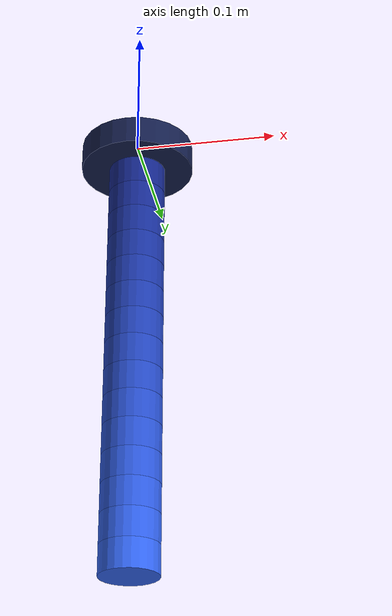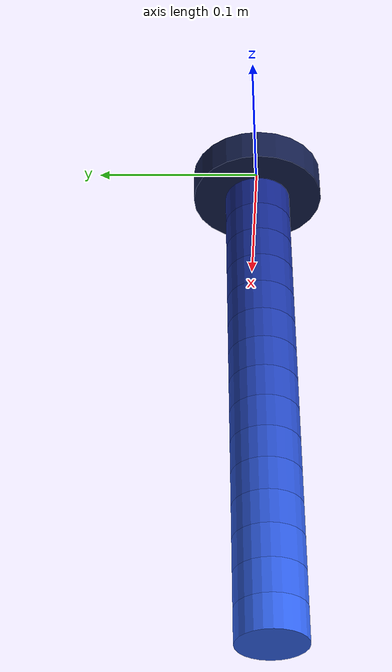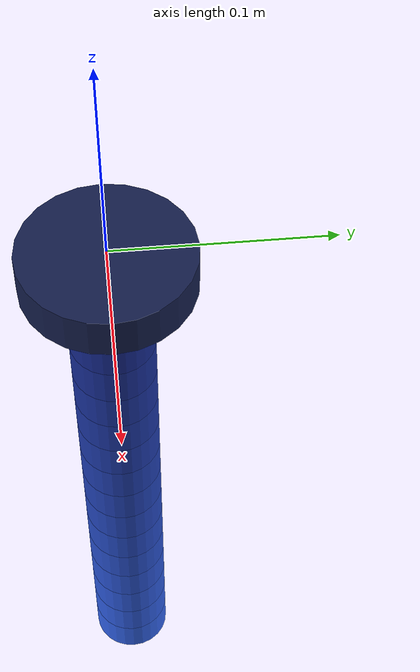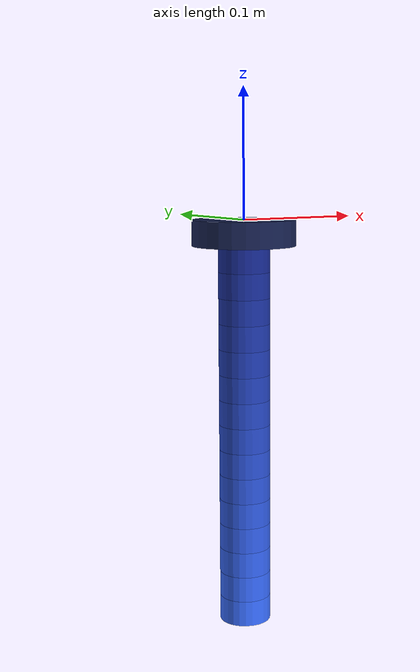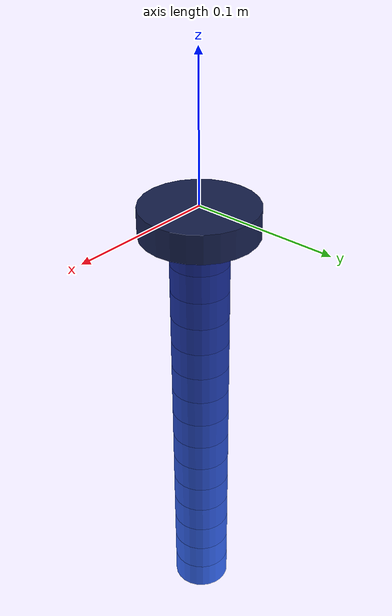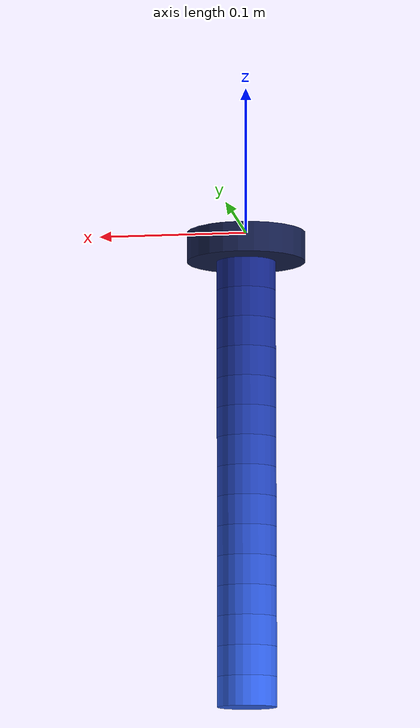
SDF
<?xml version="1.0" encoding="UTF-8"?>
<sdf version='1.9'>
  <model name='continuum_arm_soft'>
    <self_collide>false</self_collide>
    <static>false</static>

    <link name="continuum_arm_soft/base_cyl">
      <pose>0 0 -0.01000 0 0 0</pose>
      <gravity>true</gravity>
      <self_collide>false</self_collide>
      <velocity_decay/>
      <inertial>
        <mass>0.05</mass>
        <inertia>
          <ixx>5.227610e-05</ixx>
          <iyy>5.227610e-05</iyy>
          <izz>9.650973e-05</izz>
        </inertia>
      </inertial>
      <collision name="continuum_arm_soft/base_cyl_collision">
        <geometry>
          <cylinder><radius>0.04</radius><length>0.02</length></cylinder>
        </geometry>
      </collision>
      <visual name="continuum_arm_soft/base_cyl_visual">
        <geometry>
          <cylinder><radius>0.04</radius><length>0.02</length></cylinder>
        </geometry>
        <material>
          <ambient>0.05 0.08 0.20 1</ambient>
          <diffuse>0.08 0.12 0.30 1</diffuse>
          <specular>0.2 0.2 0.2 1</specular>
        </material>
      </visual>
    </link>
    <!-- Segment 1/15 -->
    <link name="continuum_arm_soft/segment_1">
      <pose>0 0 -0.03000 0 0 0</pose>
      <gravity>true</gravity>
      <self_collide>false</self_collide>
      <velocity_decay/>
      <inertial>
        <mass>0.0133</mass>
        <inertia>
          <ixx>3.686135e-06</ixx>
          <iyy>3.686135e-06</iyy>
          <izz>5.529203e-06</izz>
        </inertia>
      </inertial>
      <collision name="continuum_arm_soft/segment_1_collision">
        <geometry>
          <cylinder><radius>0.02</radius><length>0.02</length></cylinder>
        </geometry>
      </collision>
      <visual name="continuum_arm_soft/segment_1_visual">
        <geometry>
          <cylinder><radius>0.02</radius><length>0.02</length></cylinder>
        </geometry>
        <material>
          <ambient>0.050 0.080 0.350 1</ambient>
          <diffuse>0.080 0.150 0.550 1</diffuse>
          <specular>0.2 0.2 0.2 1</specular>
        </material>
      </visual>
    </link>
    <joint name="continuum_arm_soft/joint_1" type="universal">
      <parent>continuum_arm_soft/base_cyl</parent>
      <child>continuum_arm_soft/segment_1</child>
      <pose>0 0 0.01000 0 0 0</pose>
      <axis>
        <xyz>1 0 0</xyz>
        <limit>
          <lower>-0.5</lower>
          <upper>0.5</upper>
          <effort>0.6</effort>
          <velocity>5.0</velocity>
        </limit>
        <dynamics>
          <spring_stiffness>1.25</spring_stiffness>
          <spring_reference>0.0</spring_reference>
          <damping>0.08</damping>
        </dynamics>
      </axis>
      <axis2>
        <xyz>0 1 0</xyz>
        <limit>
          <lower>-0.5</lower>
          <upper>0.5</upper>
          <effort>0.6</effort>
          <velocity>5.0</velocity>
        </limit>
        <dynamics>
          <spring_stiffness>1.25</spring_stiffness>
          <spring_reference>0.0</spring_reference>
          <damping>0.08</damping>
        </dynamics>
      </axis2>
    </joint>
    <!-- Segment 2/15 -->
    <link name="continuum_arm_soft/segment_2">
      <pose>0 0 -0.05000 0 0 0</pose>
      <gravity>true</gravity>
      <self_collide>false</self_collide>
      <velocity_decay/>
      <inertial>
        <mass>0.0133</mass>
        <inertia>
          <ixx>3.686135e-06</ixx>
          <iyy>3.686135e-06</iyy>
          <izz>5.529203e-06</izz>
        </inertia>
      </inertial>
      <collision name="continuum_arm_soft/segment_2_collision">
        <geometry>
          <cylinder><radius>0.02</radius><length>0.02</length></cylinder>
        </geometry>
      </collision>
      <visual name="continuum_arm_soft/segment_2_visual">
        <geometry>
          <cylinder><radius>0.02</radius><length>0.02</length></cylinder>
        </geometry>
        <material>
          <ambient>0.057 0.093 0.382 1</ambient>
          <diffuse>0.089 0.168 0.579 1</diffuse>
          <specular>0.2 0.2 0.2 1</specular>
        </material>
      </visual>
    </link>
    <joint name="continuum_arm_soft/joint_2" type="universal">
      <parent>continuum_arm_soft/segment_1</parent>
      <child>continuum_arm_soft/segment_2</child>
      <pose>0 0 0.01000 0 0 0</pose>
      <axis>
        <xyz>1 0 0</xyz>
        <limit>
          <lower>-0.5</lower>
          <upper>0.5</upper>
          <effort>0.6</effort>
          <velocity>5.0</velocity>
        </limit>
        <dynamics>
          <spring_stiffness>1.25</spring_stiffness>
          <spring_reference>0.0</spring_reference>
          <damping>0.08</damping>
        </dynamics>
      </axis>
      <axis2>
        <xyz>0 1 0</xyz>
        <limit>
          <lower>-0.5</lower>
          <upper>0.5</upper>
          <effort>0.6</effort>
          <velocity>5.0</velocity>
        </limit>
        <dynamics>
          <spring_stiffness>1.25</spring_stiffness>
          <spring_reference>0.0</spring_reference>
          <damping>0.08</damping>
        </dynamics>
      </axis2>
    </joint>
    <!-- Segment 3/15 -->
    <link name="continuum_arm_soft/segment_3">
      <pose>0 0 -0.07000 0 0 0</pose>
      <gravity>true</gravity>
      <self_collide>false</self_collide>
      <velocity_decay/>
      <inertial>
        <mass>0.0133</mass>
        <inertia>
          <ixx>3.686135e-06</ixx>
          <iyy>3.686135e-06</iyy>
          <izz>5.529203e-06</izz>
        </inertia>
      </inertial>
      <collision name="continuum_arm_soft/segment_3_collision">
        <geometry>
          <cylinder><radius>0.02</radius><length>0.02</length></cylinder>
        </geometry>
      </collision>
      <visual name="continuum_arm_soft/segment_3_visual">
        <geometry>
          <cylinder><radius>0.02</radius><length>0.02</length></cylinder>
        </geometry>
        <material>
          <ambient>0.064 0.106 0.414 1</ambient>
          <diffuse>0.097 0.186 0.607 1</diffuse>
          <specular>0.2 0.2 0.2 1</specular>
        </material>
      </visual>
    </link>
    <joint name="continuum_arm_soft/joint_3" type="universal">
      <parent>continuum_arm_soft/segment_2</parent>
      <child>continuum_arm_soft/segment_3</child>
      <pose>0 0 0.01000 0 0 0</pose>
      <axis>
        <xyz>1 0 0</xyz>
        <limit>
          <lower>-0.5</lower>
          <upper>0.5</upper>
          <effort>0.6</effort>
          <velocity>5.0</velocity>
        </limit>
        <dynamics>
          <spring_stiffness>1.25</spring_stiffness>
          <spring_reference>0.0</spring_reference>
          <damping>0.08</damping>
        </dynamics>
      </axis>
      <axis2>
        <xyz>0 1 0</xyz>
        <limit>
          <lower>-0.5</lower>
          <upper>0.5</upper>
          <effort>0.6</effort>
          <velocity>5.0</velocity>
        </limit>
        <dynamics>
          <spring_stiffness>1.25</spring_stiffness>
          <spring_reference>0.0</spring_reference>
          <damping>0.08</damping>
        </dynamics>
      </axis2>
    </joint>
    <!-- Segment 4/15 -->
    <link name="continuum_arm_soft/segment_4">
      <pose>0 0 -0.09000 0 0 0</pose>
      <gravity>true</gravity>
      <self_collide>false</self_collide>
      <velocity_decay/>
      <inertial>
        <mass>0.0133</mass>
        <inertia>
          <ixx>3.686135e-06</ixx>
          <iyy>3.686135e-06</iyy>
          <izz>5.529203e-06</izz>
        </inertia>
      </inertial>
      <collision name="continuum_arm_soft/segment_4_collision">
        <geometry>
          <cylinder><radius>0.02</radius><length>0.02</length></cylinder>
        </geometry>
      </collision>
      <visual name="continuum_arm_soft/segment_4_visual">
        <geometry>
          <cylinder><radius>0.02</radius><length>0.02</length></cylinder>
        </geometry>
        <material>
          <ambient>0.071 0.119 0.446 1</ambient>
          <diffuse>0.106 0.204 0.636 1</diffuse>
          <specular>0.2 0.2 0.2 1</specular>
        </material>
      </visual>
    </link>
    <joint name="continuum_arm_soft/joint_4" type="universal">
      <parent>continuum_arm_soft/segment_3</parent>
      <child>continuum_arm_soft/segment_4</child>
      <pose>0 0 0.01000 0 0 0</pose>
      <axis>
        <xyz>1 0 0</xyz>
        <limit>
          <lower>-0.5</lower>
          <upper>0.5</upper>
          <effort>0.6</effort>
          <velocity>5.0</velocity>
        </limit>
        <dynamics>
          <spring_stiffness>1.25</spring_stiffness>
          <spring_reference>0.0</spring_reference>
          <damping>0.08</damping>
        </dynamics>
      </axis>
      <axis2>
        <xyz>0 1 0</xyz>
        <limit>
          <lower>-0.5</lower>
          <upper>0.5</upper>
          <effort>0.6</effort>
          <velocity>5.0</velocity>
        </limit>
        <dynamics>
          <spring_stiffness>1.25</spring_stiffness>
          <spring_reference>0.0</spring_reference>
          <damping>0.08</damping>
        </dynamics>
      </axis2>
    </joint>
    <!-- Segment 5/15 -->
    <link name="continuum_arm_soft/segment_5">
      <pose>0 0 -0.11000 0 0 0</pose>
      <gravity>true</gravity>
      <self_collide>false</self_collide>
      <velocity_decay/>
      <inertial>
        <mass>0.0133</mass>
        <inertia>
          <ixx>3.686135e-06</ixx>
          <iyy>3.686135e-06</iyy>
          <izz>5.529203e-06</izz>
        </inertia>
      </inertial>
      <collision name="continuum_arm_soft/segment_5_collision">
        <geometry>
          <cylinder><radius>0.02</radius><length>0.02</length></cylinder>
        </geometry>
      </collision>
      <visual name="continuum_arm_soft/segment_5_visual">
        <geometry>
          <cylinder><radius>0.02</radius><length>0.02</length></cylinder>
        </geometry>
        <material>
          <ambient>0.079 0.131 0.479 1</ambient>
          <diffuse>0.114 0.221 0.664 1</diffuse>
          <specular>0.2 0.2 0.2 1</specular>
        </material>
      </visual>
    </link>
    <joint name="continuum_arm_soft/joint_5" type="universal">
      <parent>continuum_arm_soft/segment_4</parent>
      <child>continuum_arm_soft/segment_5</child>
      <pose>0 0 0.01000 0 0 0</pose>
      <axis>
        <xyz>1 0 0</xyz>
        <limit>
          <lower>-0.5</lower>
          <upper>0.5</upper>
          <effort>0.6</effort>
          <velocity>5.0</velocity>
        </limit>
        <dynamics>
          <spring_stiffness>1.25</spring_stiffness>
          <spring_reference>0.0</spring_reference>
          <damping>0.08</damping>
        </dynamics>
      </axis>
      <axis2>
        <xyz>0 1 0</xyz>
        <limit>
          <lower>-0.5</lower>
          <upper>0.5</upper>
          <effort>0.6</effort>
          <velocity>5.0</velocity>
        </limit>
        <dynamics>
          <spring_stiffness>1.25</spring_stiffness>
          <spring_reference>0.0</spring_reference>
          <damping>0.08</damping>
        </dynamics>
      </axis2>
    </joint>
    <!-- Segment 6/15 -->
    <link name="continuum_arm_soft/segment_6">
      <pose>0 0 -0.13000 0 0 0</pose>
      <gravity>true</gravity>
      <self_collide>false</self_collide>
      <velocity_decay/>
      <inertial>
        <mass>0.0133</mass>
        <inertia>
          <ixx>3.686135e-06</ixx>
          <iyy>3.686135e-06</iyy>
          <izz>5.529203e-06</izz>
        </inertia>
      </inertial>
      <collision name="continuum_arm_soft/segment_6_collision">
        <geometry>
          <cylinder><radius>0.02</radius><length>0.02</length></cylinder>
        </geometry>
      </collision>
      <visual name="continuum_arm_soft/segment_6_visual">
        <geometry>
          <cylinder><radius>0.02</radius><length>0.02</length></cylinder>
        </geometry>
        <material>
          <ambient>0.086 0.144 0.511 1</ambient>
          <diffuse>0.123 0.239 0.693 1</diffuse>
          <specular>0.2 0.2 0.2 1</specular>
        </material>
      </visual>
    </link>
    <joint name="continuum_arm_soft/joint_6" type="universal">
      <parent>continuum_arm_soft/segment_5</parent>
      <child>continuum_arm_soft/segment_6</child>
      <pose>0 0 0.01000 0 0 0</pose>
      <axis>
        <xyz>1 0 0</xyz>
        <limit>
          <lower>-0.5</lower>
          <upper>0.5</upper>
          <effort>0.6</effort>
          <velocity>5.0</velocity>
        </limit>
        <dynamics>
          <spring_stiffness>1.25</spring_stiffness>
          <spring_reference>0.0</spring_reference>
          <damping>0.08</damping>
        </dynamics>
      </axis>
      <axis2>
        <xyz>0 1 0</xyz>
        <limit>
          <lower>-0.5</lower>
          <upper>0.5</upper>
          <effort>0.6</effort>
          <velocity>5.0</velocity>
        </limit>
        <dynamics>
          <spring_stiffness>1.25</spring_stiffness>
          <spring_reference>0.0</spring_reference>
          <damping>0.08</damping>
        </dynamics>
      </axis2>
    </joint>
    <!-- Segment 7/15 -->
    <link name="continuum_arm_soft/segment_7">
      <pose>0 0 -0.15000 0 0 0</pose>
      <gravity>true</gravity>
      <self_collide>false</self_collide>
      <velocity_decay/>
      <inertial>
        <mass>0.0133</mass>
        <inertia>
          <ixx>3.686135e-06</ixx>
          <iyy>3.686135e-06</iyy>
          <izz>5.529203e-06</izz>
        </inertia>
      </inertial>
      <collision name="continuum_arm_soft/segment_7_collision">
        <geometry>
          <cylinder><radius>0.02</radius><length>0.02</length></cylinder>
        </geometry>
      </collision>
      <visual name="continuum_arm_soft/segment_7_visual">
        <geometry>
          <cylinder><radius>0.02</radius><length>0.02</length></cylinder>
        </geometry>
        <material>
          <ambient>0.093 0.157 0.543 1</ambient>
          <diffuse>0.131 0.257 0.721 1</diffuse>
          <specular>0.2 0.2 0.2 1</specular>
        </material>
      </visual>
    </link>
    <joint name="continuum_arm_soft/joint_7" type="universal">
      <parent>continuum_arm_soft/segment_6</parent>
      <child>continuum_arm_soft/segment_7</child>
      <pose>0 0 0.01000 0 0 0</pose>
      <axis>
        <xyz>1 0 0</xyz>
        <limit>
          <lower>-0.5</lower>
          <upper>0.5</upper>
          <effort>0.6</effort>
          <velocity>5.0</velocity>
        </limit>
        <dynamics>
          <spring_stiffness>1.25</spring_stiffness>
          <spring_reference>0.0</spring_reference>
          <damping>0.08</damping>
        </dynamics>
      </axis>
      <axis2>
        <xyz>0 1 0</xyz>
        <limit>
          <lower>-0.5</lower>
          <upper>0.5</upper>
          <effort>0.6</effort>
          <velocity>5.0</velocity>
        </limit>
        <dynamics>
          <spring_stiffness>1.25</spring_stiffness>
          <spring_reference>0.0</spring_reference>
          <damping>0.08</damping>
        </dynamics>
      </axis2>
    </joint>
    <!-- Segment 8/15 -->
    <link name="continuum_arm_soft/segment_8">
      <pose>0 0 -0.17000 0 0 0</pose>
      <gravity>true</gravity>
      <self_collide>false</self_collide>
      <velocity_decay/>
      <inertial>
        <mass>0.0133</mass>
        <inertia>
          <ixx>3.686135e-06</ixx>
          <iyy>3.686135e-06</iyy>
          <izz>5.529203e-06</izz>
        </inertia>
      </inertial>
      <collision name="continuum_arm_soft/segment_8_collision">
        <geometry>
          <cylinder><radius>0.02</radius><length>0.02</length></cylinder>
        </geometry>
      </collision>
      <visual name="continuum_arm_soft/segment_8_visual">
        <geometry>
          <cylinder><radius>0.02</radius><length>0.02</length></cylinder>
        </geometry>
        <material>
          <ambient>0.100 0.170 0.575 1</ambient>
          <diffuse>0.140 0.275 0.750 1</diffuse>
          <specular>0.2 0.2 0.2 1</specular>
        </material>
      </visual>
    </link>
    <joint name="continuum_arm_soft/joint_8" type="universal">
      <parent>continuum_arm_soft/segment_7</parent>
      <child>continuum_arm_soft/segment_8</child>
      <pose>0 0 0.01000 0 0 0</pose>
      <axis>
        <xyz>1 0 0</xyz>
        <limit>
          <lower>-0.5</lower>
          <upper>0.5</upper>
          <effort>0.6</effort>
          <velocity>5.0</velocity>
        </limit>
        <dynamics>
          <spring_stiffness>1.25</spring_stiffness>
          <spring_reference>0.0</spring_reference>
          <damping>0.08</damping>
        </dynamics>
      </axis>
      <axis2>
        <xyz>0 1 0</xyz>
        <limit>
          <lower>-0.5</lower>
          <upper>0.5</upper>
          <effort>0.6</effort>
          <velocity>5.0</velocity>
        </limit>
        <dynamics>
          <spring_stiffness>1.25</spring_stiffness>
          <spring_reference>0.0</spring_reference>
          <damping>0.08</damping>
        </dynamics>
      </axis2>
    </joint>
    <!-- Segment 9/15 -->
    <link name="continuum_arm_soft/segment_9">
      <pose>0 0 -0.19000 0 0 0</pose>
      <gravity>true</gravity>
      <self_collide>false</self_collide>
      <velocity_decay/>
      <inertial>
        <mass>0.0133</mass>
        <inertia>
          <ixx>3.686135e-06</ixx>
          <iyy>3.686135e-06</iyy>
          <izz>5.529203e-06</izz>
        </inertia>
      </inertial>
      <collision name="continuum_arm_soft/segment_9_collision">
        <geometry>
          <cylinder><radius>0.02</radius><length>0.02</length></cylinder>
        </geometry>
      </collision>
      <visual name="continuum_arm_soft/segment_9_visual">
        <geometry>
          <cylinder><radius>0.02</radius><length>0.02</length></cylinder>
        </geometry>
        <material>
          <ambient>0.107 0.183 0.607 1</ambient>
          <diffuse>0.149 0.293 0.779 1</diffuse>
          <specular>0.2 0.2 0.2 1</specular>
        </material>
      </visual>
    </link>
    <joint name="continuum_arm_soft/joint_9" type="universal">
      <parent>continuum_arm_soft/segment_8</parent>
      <child>continuum_arm_soft/segment_9</child>
      <pose>0 0 0.01000 0 0 0</pose>
      <axis>
        <xyz>1 0 0</xyz>
        <limit>
          <lower>-0.5</lower>
          <upper>0.5</upper>
          <effort>0.6</effort>
          <velocity>5.0</velocity>
        </limit>
        <dynamics>
          <spring_stiffness>1.25</spring_stiffness>
          <spring_reference>0.0</spring_reference>
          <damping>0.08</damping>
        </dynamics>
      </axis>
      <axis2>
        <xyz>0 1 0</xyz>
        <limit>
          <lower>-0.5</lower>
          <upper>0.5</upper>
          <effort>0.6</effort>
          <velocity>5.0</velocity>
        </limit>
        <dynamics>
          <spring_stiffness>1.25</spring_stiffness>
          <spring_reference>0.0</spring_reference>
          <damping>0.08</damping>
        </dynamics>
      </axis2>
    </joint>
    <!-- Segment 10/15 -->
    <link name="continuum_arm_soft/segment_10">
      <pose>0 0 -0.21000 0 0 0</pose>
      <gravity>true</gravity>
      <self_collide>false</self_collide>
      <velocity_decay/>
      <inertial>
        <mass>0.0133</mass>
        <inertia>
          <ixx>3.686135e-06</ixx>
          <iyy>3.686135e-06</iyy>
          <izz>5.529203e-06</izz>
        </inertia>
      </inertial>
      <collision name="continuum_arm_soft/segment_10_collision">
        <geometry>
          <cylinder><radius>0.02</radius><length>0.02</length></cylinder>
        </geometry>
      </collision>
      <visual name="continuum_arm_soft/segment_10_visual">
        <geometry>
          <cylinder><radius>0.02</radius><length>0.02</length></cylinder>
        </geometry>
        <material>
          <ambient>0.114 0.196 0.639 1</ambient>
          <diffuse>0.157 0.311 0.807 1</diffuse>
          <specular>0.2 0.2 0.2 1</specular>
        </material>
      </visual>
    </link>
    <joint name="continuum_arm_soft/joint_10" type="universal">
      <parent>continuum_arm_soft/segment_9</parent>
      <child>continuum_arm_soft/segment_10</child>
      <pose>0 0 0.01000 0 0 0</pose>
      <axis>
        <xyz>1 0 0</xyz>
        <limit>
          <lower>-0.5</lower>
          <upper>0.5</upper>
          <effort>0.6</effort>
          <velocity>5.0</velocity>
        </limit>
        <dynamics>
          <spring_stiffness>1.25</spring_stiffness>
          <spring_reference>0.0</spring_reference>
          <damping>0.08</damping>
        </dynamics>
      </axis>
      <axis2>
        <xyz>0 1 0</xyz>
        <limit>
          <lower>-0.5</lower>
          <upper>0.5</upper>
          <effort>0.6</effort>
          <velocity>5.0</velocity>
        </limit>
        <dynamics>
          <spring_stiffness>1.25</spring_stiffness>
          <spring_reference>0.0</spring_reference>
          <damping>0.08</damping>
        </dynamics>
      </axis2>
    </joint>
    <!-- Segment 11/15 -->
    <link name="continuum_arm_soft/segment_11">
      <pose>0 0 -0.23000 0 0 0</pose>
      <gravity>true</gravity>
      <self_collide>false</self_collide>
      <velocity_decay/>
      <inertial>
        <mass>0.0133</mass>
        <inertia>
          <ixx>3.686135e-06</ixx>
          <iyy>3.686135e-06</iyy>
          <izz>5.529203e-06</izz>
        </inertia>
      </inertial>
      <collision name="continuum_arm_soft/segment_11_collision">
        <geometry>
          <cylinder><radius>0.02</radius><length>0.02</length></cylinder>
        </geometry>
      </collision>
      <visual name="continuum_arm_soft/segment_11_visual">
        <geometry>
          <cylinder><radius>0.02</radius><length>0.02</length></cylinder>
        </geometry>
        <material>
          <ambient>0.121 0.209 0.671 1</ambient>
          <diffuse>0.166 0.329 0.836 1</diffuse>
          <specular>0.2 0.2 0.2 1</specular>
        </material>
      </visual>
    </link>
    <joint name="continuum_arm_soft/joint_11" type="universal">
      <parent>continuum_arm_soft/segment_10</parent>
      <child>continuum_arm_soft/segment_11</child>
      <pose>0 0 0.01000 0 0 0</pose>
      <axis>
        <xyz>1 0 0</xyz>
        <limit>
          <lower>-0.5</lower>
          <upper>0.5</upper>
          <effort>0.6</effort>
          <velocity>5.0</velocity>
        </limit>
        <dynamics>
          <spring_stiffness>1.25</spring_stiffness>
          <spring_reference>0.0</spring_reference>
          <damping>0.08</damping>
        </dynamics>
      </axis>
      <axis2>
        <xyz>0 1 0</xyz>
        <limit>
          <lower>-0.5</lower>
          <upper>0.5</upper>
          <effort>0.6</effort>
          <velocity>5.0</velocity>
        </limit>
        <dynamics>
          <spring_stiffness>1.25</spring_stiffness>
          <spring_reference>0.0</spring_reference>
          <damping>0.08</damping>
        </dynamics>
      </axis2>
    </joint>
    <!-- Segment 12/15 -->
    <link name="continuum_arm_soft/segment_12">
      <pose>0 0 -0.25000 0 0 0</pose>
      <gravity>true</gravity>
      <self_collide>false</self_collide>
      <velocity_decay/>
      <inertial>
        <mass>0.0133</mass>
        <inertia>
          <ixx>3.686135e-06</ixx>
          <iyy>3.686135e-06</iyy>
          <izz>5.529203e-06</izz>
        </inertia>
      </inertial>
      <collision name="continuum_arm_soft/segment_12_collision">
        <geometry>
          <cylinder><radius>0.02</radius><length>0.02</length></cylinder>
        </geometry>
      </collision>
      <visual name="continuum_arm_soft/segment_12_visual">
        <geometry>
          <cylinder><radius>0.02</radius><length>0.02</length></cylinder>
        </geometry>
        <material>
          <ambient>0.129 0.221 0.704 1</ambient>
          <diffuse>0.174 0.346 0.864 1</diffuse>
          <specular>0.2 0.2 0.2 1</specular>
        </material>
      </visual>
    </link>
    <joint name="continuum_arm_soft/joint_12" type="universal">
      <parent>continuum_arm_soft/segment_11</parent>
      <child>continuum_arm_soft/segment_12</child>
      <pose>0 0 0.01000 0 0 0</pose>
      <axis>
        <xyz>1 0 0</xyz>
        <limit>
          <lower>-0.5</lower>
          <upper>0.5</upper>
          <effort>0.6</effort>
          <velocity>5.0</velocity>
        </limit>
        <dynamics>
          <spring_stiffness>1.25</spring_stiffness>
          <spring_reference>0.0</spring_reference>
          <damping>0.08</damping>
        </dynamics>
      </axis>
      <axis2>
        <xyz>0 1 0</xyz>
        <limit>
          <lower>-0.5</lower>
          <upper>0.5</upper>
          <effort>0.6</effort>
          <velocity>5.0</velocity>
        </limit>
        <dynamics>
          <spring_stiffness>1.25</spring_stiffness>
          <spring_reference>0.0</spring_reference>
          <damping>0.08</damping>
        </dynamics>
      </axis2>
    </joint>
    <!-- Segment 13/15 -->
    <link name="continuum_arm_soft/segment_13">
      <pose>0 0 -0.27000 0 0 0</pose>
      <gravity>true</gravity>
      <self_collide>false</self_collide>
      <velocity_decay/>
      <inertial>
        <mass>0.0133</mass>
        <inertia>
          <ixx>3.686135e-06</ixx>
          <iyy>3.686135e-06</iyy>
          <izz>5.529203e-06</izz>
        </inertia>
      </inertial>
      <collision name="continuum_arm_soft/segment_13_collision">
        <geometry>
          <cylinder><radius>0.02</radius><length>0.02</length></cylinder>
        </geometry>
      </collision>
      <visual name="continuum_arm_soft/segment_13_visual">
        <geometry>
          <cylinder><radius>0.02</radius><length>0.02</length></cylinder>
        </geometry>
        <material>
          <ambient>0.136 0.234 0.736 1</ambient>
          <diffuse>0.183 0.364 0.893 1</diffuse>
          <specular>0.2 0.2 0.2 1</specular>
        </material>
      </visual>
    </link>
    <joint name="continuum_arm_soft/joint_13" type="universal">
      <parent>continuum_arm_soft/segment_12</parent>
      <child>continuum_arm_soft/segment_13</child>
      <pose>0 0 0.01000 0 0 0</pose>
      <axis>
        <xyz>1 0 0</xyz>
        <limit>
          <lower>-0.5</lower>
          <upper>0.5</upper>
          <effort>0.6</effort>
          <velocity>5.0</velocity>
        </limit>
        <dynamics>
          <spring_stiffness>1.25</spring_stiffness>
          <spring_reference>0.0</spring_reference>
          <damping>0.08</damping>
        </dynamics>
      </axis>
      <axis2>
        <xyz>0 1 0</xyz>
        <limit>
          <lower>-0.5</lower>
          <upper>0.5</upper>
          <effort>0.6</effort>
          <velocity>5.0</velocity>
        </limit>
        <dynamics>
          <spring_stiffness>1.25</spring_stiffness>
          <spring_reference>0.0</spring_reference>
          <damping>0.08</damping>
        </dynamics>
      </axis2>
    </joint>
    <!-- Segment 14/15 -->
    <link name="continuum_arm_soft/segment_14">
      <pose>0 0 -0.29000 0 0 0</pose>
      <gravity>true</gravity>
      <self_collide>false</self_collide>
      <velocity_decay/>
      <inertial>
        <mass>0.0133</mass>
        <inertia>
          <ixx>3.686135e-06</ixx>
          <iyy>3.686135e-06</iyy>
          <izz>5.529203e-06</izz>
        </inertia>
      </inertial>
      <collision name="continuum_arm_soft/segment_14_collision">
        <geometry>
          <cylinder><radius>0.02</radius><length>0.02</length></cylinder>
        </geometry>
      </collision>
      <visual name="continuum_arm_soft/segment_14_visual">
        <geometry>
          <cylinder><radius>0.02</radius><length>0.02</length></cylinder>
        </geometry>
        <material>
          <ambient>0.143 0.247 0.768 1</ambient>
          <diffuse>0.191 0.382 0.921 1</diffuse>
          <specular>0.2 0.2 0.2 1</specular>
        </material>
      </visual>
    </link>
    <joint name="continuum_arm_soft/joint_14" type="universal">
      <parent>continuum_arm_soft/segment_13</parent>
      <child>continuum_arm_soft/segment_14</child>
      <pose>0 0 0.01000 0 0 0</pose>
      <axis>
        <xyz>1 0 0</xyz>
        <limit>
          <lower>-0.5</lower>
          <upper>0.5</upper>
          <effort>0.6</effort>
          <velocity>5.0</velocity>
        </limit>
        <dynamics>
          <spring_stiffness>1.25</spring_stiffness>
          <spring_reference>0.0</spring_reference>
          <damping>0.08</damping>
        </dynamics>
      </axis>
      <axis2>
        <xyz>0 1 0</xyz>
        <limit>
          <lower>-0.5</lower>
          <upper>0.5</upper>
          <effort>0.6</effort>
          <velocity>5.0</velocity>
        </limit>
        <dynamics>
          <spring_stiffness>1.25</spring_stiffness>
          <spring_reference>0.0</spring_reference>
          <damping>0.08</damping>
        </dynamics>
      </axis2>
    </joint>
    <!-- Segment 15/15 -->
    <link name="continuum_arm_soft/segment_15">
      <pose>0 0 -0.31000 0 0 0</pose>
      <gravity>true</gravity>
      <self_collide>false</self_collide>
      <velocity_decay/>
      <inertial>
        <mass>0.0133</mass>
        <inertia>
          <ixx>3.686135e-06</ixx>
          <iyy>3.686135e-06</iyy>
          <izz>5.529203e-06</izz>
        </inertia>
      </inertial>
      <collision name="continuum_arm_soft/segment_15_collision">
        <geometry>
          <cylinder><radius>0.02</radius><length>0.02</length></cylinder>
        </geometry>
      </collision>
      <visual name="continuum_arm_soft/segment_15_visual">
        <geometry>
          <cylinder><radius>0.02</radius><length>0.02</length></cylinder>
        </geometry>
        <material>
          <ambient>0.150 0.260 0.800 1</ambient>
          <diffuse>0.200 0.400 0.950 1</diffuse>
          <specular>0.2 0.2 0.2 1</specular>
        </material>
      </visual>
    </link>
    <joint name="continuum_arm_soft/joint_15" type="universal">
      <parent>continuum_arm_soft/segment_14</parent>
      <child>continuum_arm_soft/segment_15</child>
      <pose>0 0 0.01000 0 0 0</pose>
      <axis>
        <xyz>1 0 0</xyz>
        <limit>
          <lower>-0.5</lower>
          <upper>0.5</upper>
          <effort>0.6</effort>
          <velocity>5.0</velocity>
        </limit>
        <dynamics>
          <spring_stiffness>1.25</spring_stiffness>
          <spring_reference>0.0</spring_reference>
          <damping>0.08</damping>
        </dynamics>
      </axis>
      <axis2>
        <xyz>0 1 0</xyz>
        <limit>
          <lower>-0.5</lower>
          <upper>0.5</upper>
          <effort>0.6</effort>
          <velocity>5.0</velocity>
        </limit>
        <dynamics>
          <spring_stiffness>1.25</spring_stiffness>
          <spring_reference>0.0</spring_reference>
          <damping>0.08</damping>
        </dynamics>
      </axis2>
    </joint>

    <plugin filename="TendonArmController" name="tendon_arm_controller::TendonArmController">
      <joint_name>continuum_arm_soft/joint_1</joint_name>
      <joint_name>continuum_arm_soft/joint_2</joint_name>
      <joint_name>continuum_arm_soft/joint_3</joint_name>
      <joint_name>continuum_arm_soft/joint_4</joint_name>
      <joint_name>continuum_arm_soft/joint_5</joint_name>
      <joint_name>continuum_arm_soft/joint_6</joint_name>
      <joint_name>continuum_arm_soft/joint_7</joint_name>
      <joint_name>continuum_arm_soft/joint_8</joint_name>
      <joint_name>continuum_arm_soft/joint_9</joint_name>
      <joint_name>continuum_arm_soft/joint_10</joint_name>
      <joint_name>continuum_arm_soft/joint_11</joint_name>
      <joint_name>continuum_arm_soft/joint_12</joint_name>
      <joint_name>continuum_arm_soft/joint_13</joint_name>
      <joint_name>continuum_arm_soft/joint_14</joint_name>
      <joint_name>continuum_arm_soft/joint_15</joint_name>
      <pitch_radius>0.018</pitch_radius>
      <rest_length>0.3</rest_length>
      <position_p_gain>5.0</position_p_gain>
      <position_d_gain>0.05</position_d_gain>
      <effort_limit>0.6</effort_limit>
      <tendon_topic>/continuum_arm_soft/tendon_cmd</tendon_topic>
      <angles_topic>/continuum_arm_soft/bend_angles</angles_topic>
    </plugin>

    <!-- Joint state feedback (actual, physics-integrated angles), same
         pattern rigid_arm_3link uses - lets the test script verify the arm
         actually bent the way the tendon command intended. -->
    <plugin filename="gz-sim-joint-state-publisher-system" name="gz::sim::systems::JointStatePublisher">
      <topic>/continuum_arm_soft/joint_states</topic>
      <joint_name>continuum_arm_soft/joint_1</joint_name>
      <joint_name>continuum_arm_soft/joint_2</joint_name>
      <joint_name>continuum_arm_soft/joint_3</joint_name>
      <joint_name>continuum_arm_soft/joint_4</joint_name>
      <joint_name>continuum_arm_soft/joint_5</joint_name>
      <joint_name>continuum_arm_soft/joint_6</joint_name>
      <joint_name>continuum_arm_soft/joint_7</joint_name>
      <joint_name>continuum_arm_soft/joint_8</joint_name>
      <joint_name>continuum_arm_soft/joint_9</joint_name>
      <joint_name>continuum_arm_soft/joint_10</joint_name>
      <joint_name>continuum_arm_soft/joint_11</joint_name>
      <joint_name>continuum_arm_soft/joint_12</joint_name>
      <joint_name>continuum_arm_soft/joint_13</joint_name>
      <joint_name>continuum_arm_soft/joint_14</joint_name>
      <joint_name>continuum_arm_soft/joint_15</joint_name>
    </plugin>

  </model>
</sdf>
